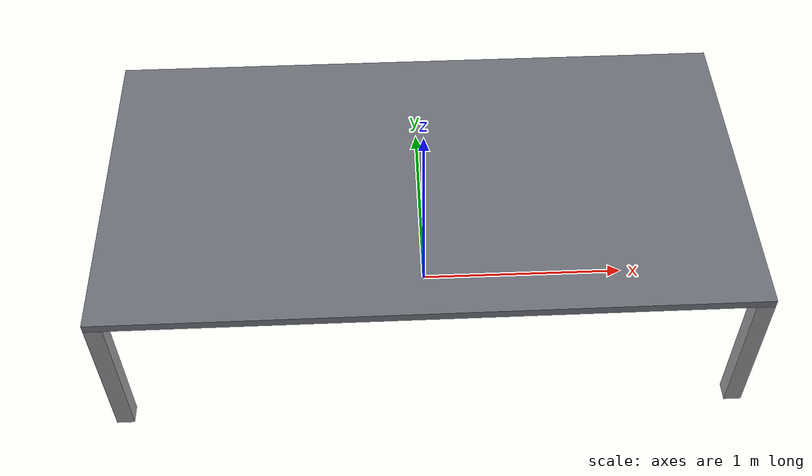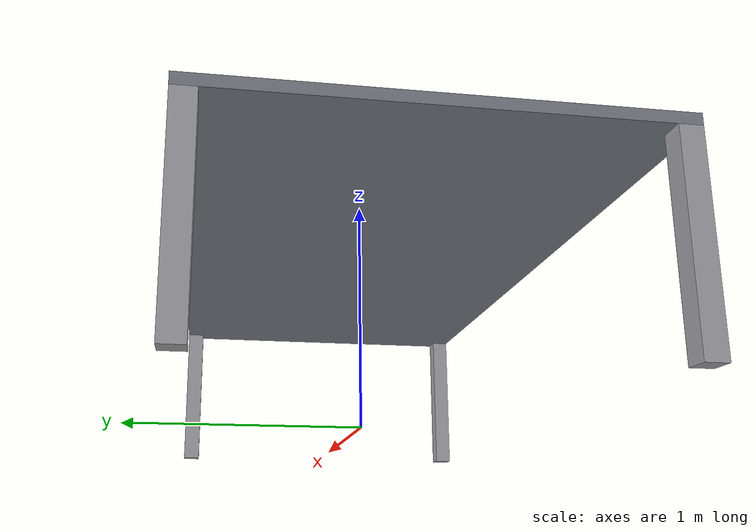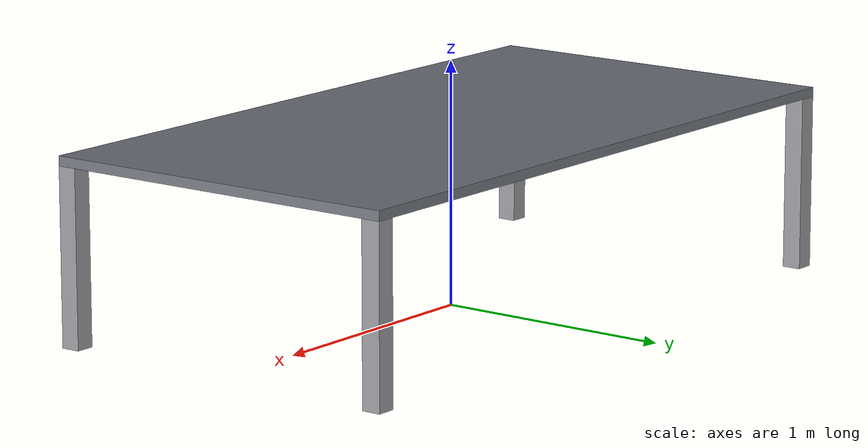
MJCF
<mujoco model="industrial_table">
  <compiler angle="radian" autolimits="true"/>

  <asset>
    <material name="industrial_table_top" rgba="0.45 0.47 0.50 1" specular="0.4" shininess="0.3"/>
    <material name="industrial_table_frame" rgba="0.60 0.60 0.62 1" specular="0.4" shininess="0.3"/>
  </asset>

  <worldbody>
    <body name="industrial_table">
      <geom name="industrial_table_top" type="box" size="1.45 0.78 0.02" pos="0 0 0.74"
            material="industrial_table_top"/>
      <geom name="industrial_table_leg_1" type="box" size="0.04 0.04 0.36" pos="1.41 0.74 0.36"
            material="industrial_table_frame"/>
      <geom name="industrial_table_leg_2" type="box" size="0.04 0.04 0.36" pos="-1.41 0.74 0.36"
            material="industrial_table_frame"/>
      <geom name="industrial_table_leg_3" type="box" size="0.04 0.04 0.36" pos="1.41 -0.74 0.36"
            material="industrial_table_frame"/>
      <geom name="industrial_table_leg_4" type="box" size="0.04 0.04 0.36" pos="-1.41 -0.74 0.36"
            material="industrial_table_frame"/>
    </body>
  </worldbody>
</mujoco>
